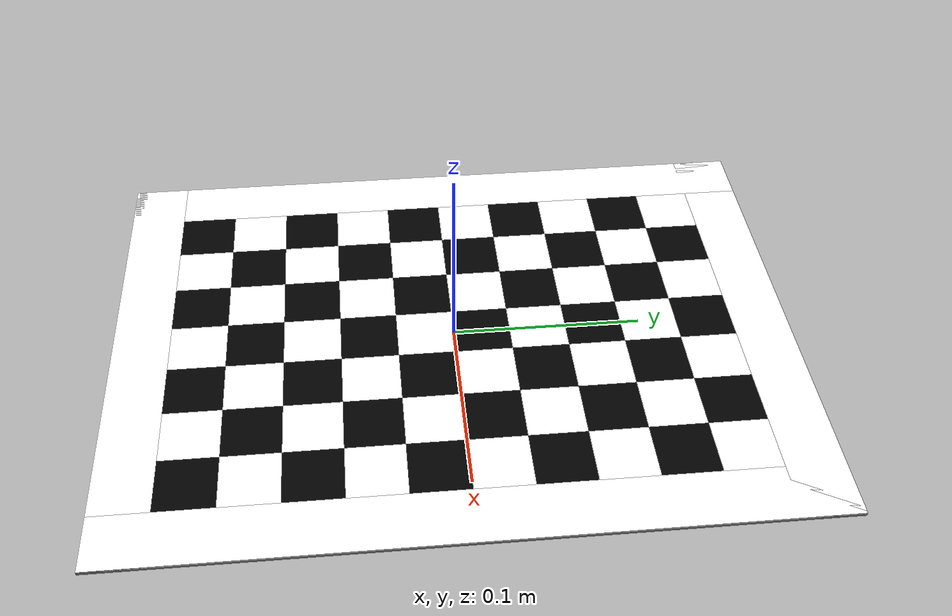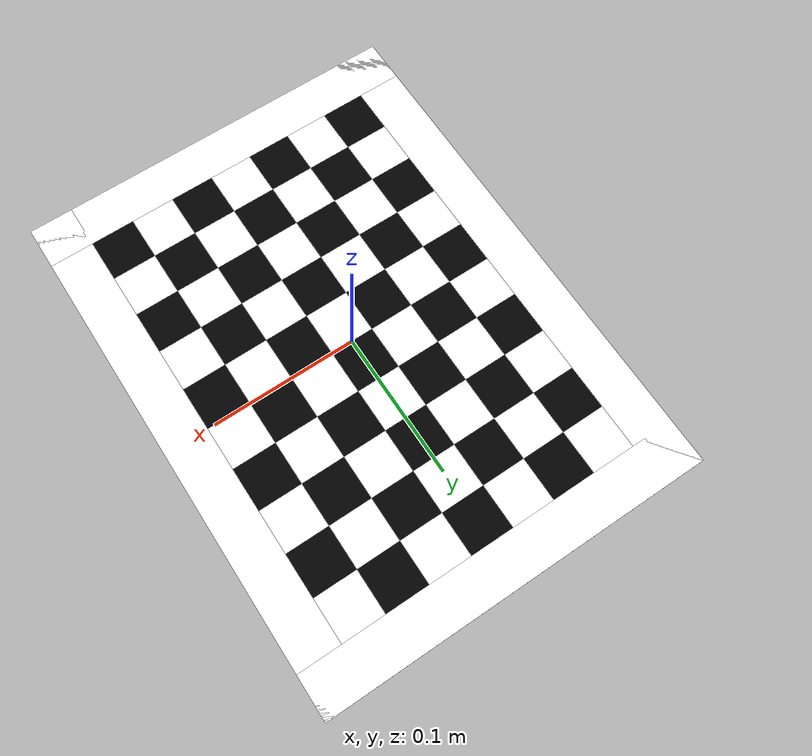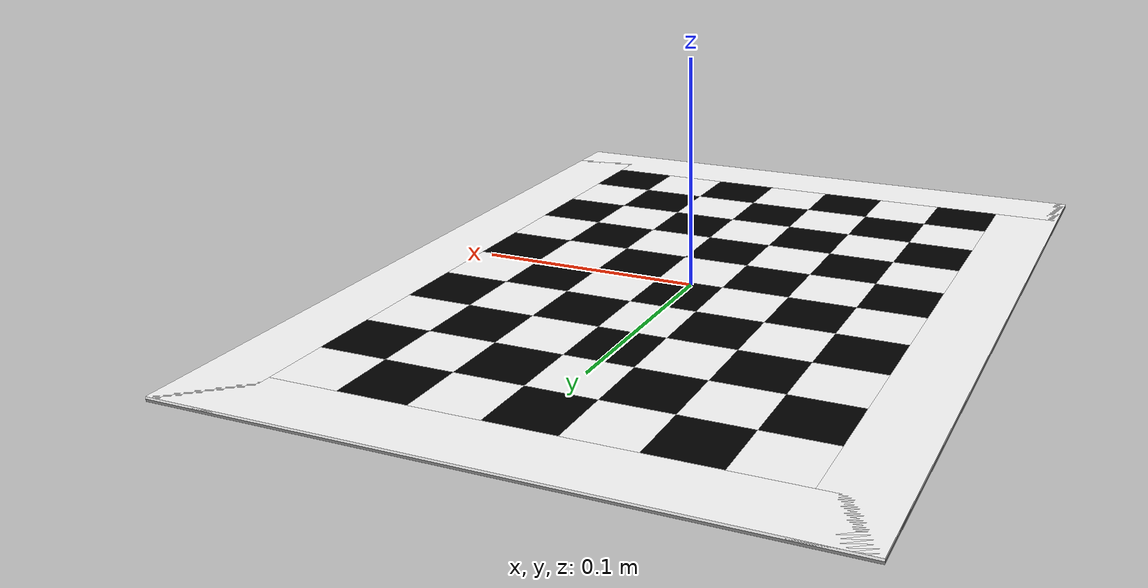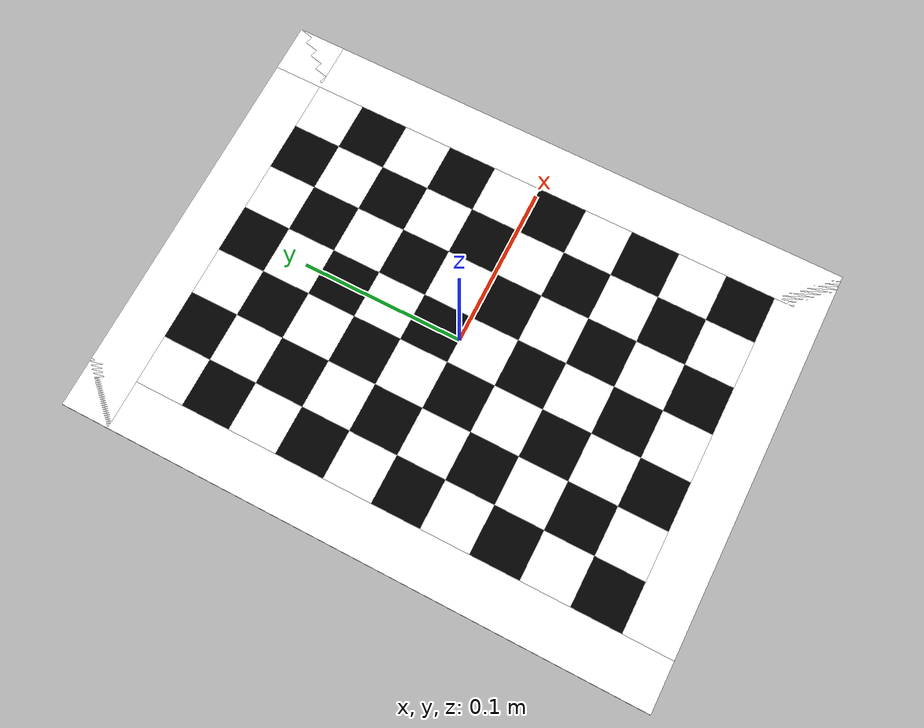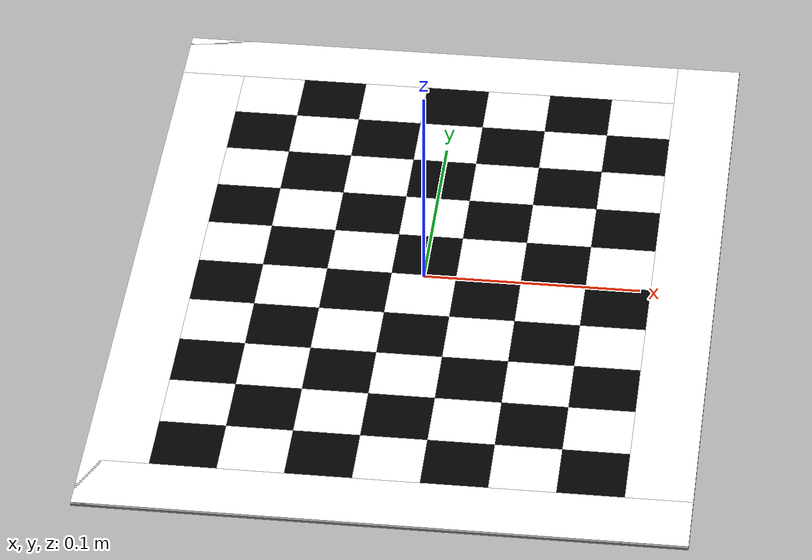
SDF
<?xml version="1.0" ?>
<!-- |    This document was autogenerated by xacro from landmark.sdf.xacro             | -->
<!-- |    EDITING THIS FILE BY HAND IS NOT RECOMMENDED                                 | -->
<sdf version="1.5" xmlns:xacro="http://www.ros.org/wiki/xacro">
  <model name="landmark">
    <static>true</static>
    <link name="base_link">
      <!-- Back of the landmark not to mess with small Z offset -->
      <visual name="back">
        <pose>0 0 -0.0005 0 0 0</pose>
        <geometry>
          <box>
            <size>0.27 0.36 0.001</size>
          </box>
        </geometry>
        <material>
          <ambient>0.5 0.5 0.5 1</ambient>
          <specular>0.5 0.5 0.5 1</specular>
          <diffuse>0.5 0.5 0.5 1</diffuse>
        </material>
      </visual>
      <inertial>
        <mass>0.1</mass>
      </inertial>
      <!-- Borders -->
      <visual name="border0">
        <pose>0.12 0 0.0005 0 0 0</pose>
        <geometry>
          <box>
            <size>0.03 0.36 0.001</size>
          </box>
        </geometry>
        <material>
          <ambient>1 1 1 1</ambient>
          <specular>1 1 1 1</specular>
          <diffuse>1 1 1 1</diffuse>
        </material>
      </visual>
      <visual name="border1">
        <pose>-0.12 0 0.0005 0 0 0</pose>
        <geometry>
          <box>
            <size>0.03 0.36 0.001</size>
          </box>
        </geometry>
        <material>
          <ambient>1 1 1 1</ambient>
          <specular>1 1 1 1</specular>
          <diffuse>1 1 1 1</diffuse>
        </material>
      </visual>
      <visual name="border2">
        <pose>0 0.165 0.0005 0 0 0</pose>
        <geometry>
          <box>
            <size>0.27 0.03 0.001</size>
          </box>
        </geometry>
        <material>
          <ambient>1 1 1 1</ambient>
          <specular>1 1 1 1</specular>
          <diffuse>1 1 1 1</diffuse>
        </material>
      </visual>
      <visual name="border3">
        <pose>0 -0.165 0.0005 0 0 0</pose>
        <geometry>
          <box>
            <size>0.27 0.03 0.001</size>
          </box>
        </geometry>
        <material>
          <ambient>1 1 1 1</ambient>
          <specular>1 1 1 1</specular>
          <diffuse>1 1 1 1</diffuse>
        </material>
      </visual>
      <visual name="69">
        <pose>0.09 0.135 0.0005 0 0 0</pose>
        <geometry>
          <box>
            <size>0.03 0.03 0.001</size>
          </box>
        </geometry>
        <material>
          <ambient>1 1 1 1</ambient>
          <specular>1 1 1 1</specular>
          <diffuse>1 1 1 1</diffuse>
        </material>
      </visual>
      <visual name="68">
        <pose>0.09 0.105 0.0005 0 0 0</pose>
        <geometry>
          <box>
            <size>0.03 0.03 0.001</size>
          </box>
        </geometry>
        <material>
          <ambient>0 0 0 1</ambient>
          <specular>0 0 0 1</specular>
          <diffuse>0 0 0 1</diffuse>
        </material>
      </visual>
      <visual name="67">
        <pose>0.09 0.075 0.0005 0 0 0</pose>
        <geometry>
          <box>
            <size>0.03 0.03 0.001</size>
          </box>
        </geometry>
        <material>
          <ambient>1 1 1 1</ambient>
          <specular>1 1 1 1</specular>
          <diffuse>1 1 1 1</diffuse>
        </material>
      </visual>
      <visual name="66">
        <pose>0.09 0.045 0.0005 0 0 0</pose>
        <geometry>
          <box>
            <size>0.03 0.03 0.001</size>
          </box>
        </geometry>
        <material>
          <ambient>0 0 0 1</ambient>
          <specular>0 0 0 1</specular>
          <diffuse>0 0 0 1</diffuse>
        </material>
      </visual>
      <visual name="65">
        <pose>0.09 0.015 0.0005 0 0 0</pose>
        <geometry>
          <box>
            <size>0.03 0.03 0.001</size>
          </box>
        </geometry>
        <material>
          <ambient>1 1 1 1</ambient>
          <specular>1 1 1 1</specular>
          <diffuse>1 1 1 1</diffuse>
        </material>
      </visual>
      <visual name="64">
        <pose>0.09 -0.015 0.0005 0 0 0</pose>
        <geometry>
          <box>
            <size>0.03 0.03 0.001</size>
          </box>
        </geometry>
        <material>
          <ambient>0 0 0 1</ambient>
          <specular>0 0 0 1</specular>
          <diffuse>0 0 0 1</diffuse>
        </material>
      </visual>
      <visual name="63">
        <pose>0.09 -0.045 0.0005 0 0 0</pose>
        <geometry>
          <box>
            <size>0.03 0.03 0.001</size>
          </box>
        </geometry>
        <material>
          <ambient>1 1 1 1</ambient>
          <specular>1 1 1 1</specular>
          <diffuse>1 1 1 1</diffuse>
        </material>
      </visual>
      <visual name="62">
        <pose>0.09 -0.075 0.0005 0 0 0</pose>
        <geometry>
          <box>
            <size>0.03 0.03 0.001</size>
          </box>
        </geometry>
        <material>
          <ambient>0 0 0 1</ambient>
          <specular>0 0 0 1</specular>
          <diffuse>0 0 0 1</diffuse>
        </material>
      </visual>
      <visual name="61">
        <pose>0.09 -0.105 0.0005 0 0 0</pose>
        <geometry>
          <box>
            <size>0.03 0.03 0.001</size>
          </box>
        </geometry>
        <material>
          <ambient>1 1 1 1</ambient>
          <specular>1 1 1 1</specular>
          <diffuse>1 1 1 1</diffuse>
        </material>
      </visual>
      <visual name="60">
        <pose>0.09 -0.135 0.0005 0 0 0</pose>
        <geometry>
          <box>
            <size>0.03 0.03 0.001</size>
          </box>
        </geometry>
        <material>
          <ambient>0 0 0 1</ambient>
          <specular>0 0 0 1</specular>
          <diffuse>0 0 0 1</diffuse>
        </material>
      </visual>
      <visual name="59">
        <pose>0.06 0.135 0.0005 0 0 0</pose>
        <geometry>
          <box>
            <size>0.03 0.03 0.001</size>
          </box>
        </geometry>
        <material>
          <ambient>0 0 0 1</ambient>
          <specular>0 0 0 1</specular>
          <diffuse>0 0 0 1</diffuse>
        </material>
      </visual>
      <visual name="58">
        <pose>0.06 0.105 0.0005 0 0 0</pose>
        <geometry>
          <box>
            <size>0.03 0.03 0.001</size>
          </box>
        </geometry>
        <material>
          <ambient>1 1 1 1</ambient>
          <specular>1 1 1 1</specular>
          <diffuse>1 1 1 1</diffuse>
        </material>
      </visual>
      <visual name="57">
        <pose>0.06 0.075 0.0005 0 0 0</pose>
        <geometry>
          <box>
            <size>0.03 0.03 0.001</size>
          </box>
        </geometry>
        <material>
          <ambient>0 0 0 1</ambient>
          <specular>0 0 0 1</specular>
          <diffuse>0 0 0 1</diffuse>
        </material>
      </visual>
      <visual name="56">
        <pose>0.06 0.045 0.0005 0 0 0</pose>
        <geometry>
          <box>
            <size>0.03 0.03 0.001</size>
          </box>
        </geometry>
        <material>
          <ambient>1 1 1 1</ambient>
          <specular>1 1 1 1</specular>
          <diffuse>1 1 1 1</diffuse>
        </material>
      </visual>
      <visual name="55">
        <pose>0.06 0.015 0.0005 0 0 0</pose>
        <geometry>
          <box>
            <size>0.03 0.03 0.001</size>
          </box>
        </geometry>
        <material>
          <ambient>0 0 0 1</ambient>
          <specular>0 0 0 1</specular>
          <diffuse>0 0 0 1</diffuse>
        </material>
      </visual>
      <visual name="54">
        <pose>0.06 -0.015 0.0005 0 0 0</pose>
        <geometry>
          <box>
            <size>0.03 0.03 0.001</size>
          </box>
        </geometry>
        <material>
          <ambient>1 1 1 1</ambient>
          <specular>1 1 1 1</specular>
          <diffuse>1 1 1 1</diffuse>
        </material>
      </visual>
      <visual name="53">
        <pose>0.06 -0.045 0.0005 0 0 0</pose>
        <geometry>
          <box>
            <size>0.03 0.03 0.001</size>
          </box>
        </geometry>
        <material>
          <ambient>0 0 0 1</ambient>
          <specular>0 0 0 1</specular>
          <diffuse>0 0 0 1</diffuse>
        </material>
      </visual>
      <visual name="52">
        <pose>0.06 -0.075 0.0005 0 0 0</pose>
        <geometry>
          <box>
            <size>0.03 0.03 0.001</size>
          </box>
        </geometry>
        <material>
          <ambient>1 1 1 1</ambient>
          <specular>1 1 1 1</specular>
          <diffuse>1 1 1 1</diffuse>
        </material>
      </visual>
      <visual name="51">
        <pose>0.06 -0.105 0.0005 0 0 0</pose>
        <geometry>
          <box>
            <size>0.03 0.03 0.001</size>
          </box>
        </geometry>
        <material>
          <ambient>0 0 0 1</ambient>
          <specular>0 0 0 1</specular>
          <diffuse>0 0 0 1</diffuse>
        </material>
      </visual>
      <visual name="50">
        <pose>0.06 -0.135 0.0005 0 0 0</pose>
        <geometry>
          <box>
            <size>0.03 0.03 0.001</size>
          </box>
        </geometry>
        <material>
          <ambient>1 1 1 1</ambient>
          <specular>1 1 1 1</specular>
          <diffuse>1 1 1 1</diffuse>
        </material>
      </visual>
      <visual name="49">
        <pose>0.03 0.135 0.0005 0 0 0</pose>
        <geometry>
          <box>
            <size>0.03 0.03 0.001</size>
          </box>
        </geometry>
        <material>
          <ambient>1 1 1 1</ambient>
          <specular>1 1 1 1</specular>
          <diffuse>1 1 1 1</diffuse>
        </material>
      </visual>
      <visual name="48">
        <pose>0.03 0.105 0.0005 0 0 0</pose>
        <geometry>
          <box>
            <size>0.03 0.03 0.001</size>
          </box>
        </geometry>
        <material>
          <ambient>0 0 0 1</ambient>
          <specular>0 0 0 1</specular>
          <diffuse>0 0 0 1</diffuse>
        </material>
      </visual>
      <visual name="47">
        <pose>0.03 0.075 0.0005 0 0 0</pose>
        <geometry>
          <box>
            <size>0.03 0.03 0.001</size>
          </box>
        </geometry>
        <material>
          <ambient>1 1 1 1</ambient>
          <specular>1 1 1 1</specular>
          <diffuse>1 1 1 1</diffuse>
        </material>
      </visual>
      <visual name="46">
        <pose>0.03 0.045 0.0005 0 0 0</pose>
        <geometry>
          <box>
            <size>0.03 0.03 0.001</size>
          </box>
        </geometry>
        <material>
          <ambient>0 0 0 1</ambient>
          <specular>0 0 0 1</specular>
          <diffuse>0 0 0 1</diffuse>
        </material>
      </visual>
      <visual name="45">
        <pose>0.03 0.015 0.0005 0 0 0</pose>
        <geometry>
          <box>
            <size>0.03 0.03 0.001</size>
          </box>
        </geometry>
        <material>
          <ambient>1 1 1 1</ambient>
          <specular>1 1 1 1</specular>
          <diffuse>1 1 1 1</diffuse>
        </material>
      </visual>
      <visual name="44">
        <pose>0.03 -0.015 0.0005 0 0 0</pose>
        <geometry>
          <box>
            <size>0.03 0.03 0.001</size>
          </box>
        </geometry>
        <material>
          <ambient>0 0 0 1</ambient>
          <specular>0 0 0 1</specular>
          <diffuse>0 0 0 1</diffuse>
        </material>
      </visual>
      <visual name="43">
        <pose>0.03 -0.045 0.0005 0 0 0</pose>
        <geometry>
          <box>
            <size>0.03 0.03 0.001</size>
          </box>
        </geometry>
        <material>
          <ambient>1 1 1 1</ambient>
          <specular>1 1 1 1</specular>
          <diffuse>1 1 1 1</diffuse>
        </material>
      </visual>
      <visual name="42">
        <pose>0.03 -0.075 0.0005 0 0 0</pose>
        <geometry>
          <box>
            <size>0.03 0.03 0.001</size>
          </box>
        </geometry>
        <material>
          <ambient>0 0 0 1</ambient>
          <specular>0 0 0 1</specular>
          <diffuse>0 0 0 1</diffuse>
        </material>
      </visual>
      <visual name="41">
        <pose>0.03 -0.105 0.0005 0 0 0</pose>
        <geometry>
          <box>
            <size>0.03 0.03 0.001</size>
          </box>
        </geometry>
        <material>
          <ambient>1 1 1 1</ambient>
          <specular>1 1 1 1</specular>
          <diffuse>1 1 1 1</diffuse>
        </material>
      </visual>
      <visual name="40">
        <pose>0.03 -0.135 0.0005 0 0 0</pose>
        <geometry>
          <box>
            <size>0.03 0.03 0.001</size>
          </box>
        </geometry>
        <material>
          <ambient>0 0 0 1</ambient>
          <specular>0 0 0 1</specular>
          <diffuse>0 0 0 1</diffuse>
        </material>
      </visual>
      <visual name="39">
        <pose>0.0 0.135 0.0005 0 0 0</pose>
        <geometry>
          <box>
            <size>0.03 0.03 0.001</size>
          </box>
        </geometry>
        <material>
          <ambient>0 0 0 1</ambient>
          <specular>0 0 0 1</specular>
          <diffuse>0 0 0 1</diffuse>
        </material>
      </visual>
      <visual name="38">
        <pose>0.0 0.105 0.0005 0 0 0</pose>
        <geometry>
          <box>
            <size>0.03 0.03 0.001</size>
          </box>
        </geometry>
        <material>
          <ambient>1 1 1 1</ambient>
          <specular>1 1 1 1</specular>
          <diffuse>1 1 1 1</diffuse>
        </material>
      </visual>
      <visual name="37">
        <pose>0.0 0.075 0.0005 0 0 0</pose>
        <geometry>
          <box>
            <size>0.03 0.03 0.001</size>
          </box>
        </geometry>
        <material>
          <ambient>0 0 0 1</ambient>
          <specular>0 0 0 1</specular>
          <diffuse>0 0 0 1</diffuse>
        </material>
      </visual>
      <visual name="36">
        <pose>0.0 0.045 0.0005 0 0 0</pose>
        <geometry>
          <box>
            <size>0.03 0.03 0.001</size>
          </box>
        </geometry>
        <material>
          <ambient>1 1 1 1</ambient>
          <specular>1 1 1 1</specular>
          <diffuse>1 1 1 1</diffuse>
        </material>
      </visual>
      <visual name="35">
        <pose>0.0 0.015 0.0005 0 0 0</pose>
        <geometry>
          <box>
            <size>0.03 0.03 0.001</size>
          </box>
        </geometry>
        <material>
          <ambient>0 0 0 1</ambient>
          <specular>0 0 0 1</specular>
          <diffuse>0 0 0 1</diffuse>
        </material>
      </visual>
      <visual name="34">
        <pose>0.0 -0.015 0.0005 0 0 0</pose>
        <geometry>
          <box>
            <size>0.03 0.03 0.001</size>
          </box>
        </geometry>
        <material>
          <ambient>1 1 1 1</ambient>
          <specular>1 1 1 1</specular>
          <diffuse>1 1 1 1</diffuse>
        </material>
      </visual>
      <visual name="33">
        <pose>0.0 -0.045 0.0005 0 0 0</pose>
        <geometry>
          <box>
            <size>0.03 0.03 0.001</size>
          </box>
        </geometry>
        <material>
          <ambient>0 0 0 1</ambient>
          <specular>0 0 0 1</specular>
          <diffuse>0 0 0 1</diffuse>
        </material>
      </visual>
      <visual name="32">
        <pose>0.0 -0.075 0.0005 0 0 0</pose>
        <geometry>
          <box>
            <size>0.03 0.03 0.001</size>
          </box>
        </geometry>
        <material>
          <ambient>1 1 1 1</ambient>
          <specular>1 1 1 1</specular>
          <diffuse>1 1 1 1</diffuse>
        </material>
      </visual>
      <visual name="31">
        <pose>0.0 -0.105 0.0005 0 0 0</pose>
        <geometry>
          <box>
            <size>0.03 0.03 0.001</size>
          </box>
        </geometry>
        <material>
          <ambient>0 0 0 1</ambient>
          <specular>0 0 0 1</specular>
          <diffuse>0 0 0 1</diffuse>
        </material>
      </visual>
      <visual name="30">
        <pose>0.0 -0.135 0.0005 0 0 0</pose>
        <geometry>
          <box>
            <size>0.03 0.03 0.001</size>
          </box>
        </geometry>
        <material>
          <ambient>1 1 1 1</ambient>
          <specular>1 1 1 1</specular>
          <diffuse>1 1 1 1</diffuse>
        </material>
      </visual>
      <visual name="29">
        <pose>-0.03 0.135 0.0005 0 0 0</pose>
        <geometry>
          <box>
            <size>0.03 0.03 0.001</size>
          </box>
        </geometry>
        <material>
          <ambient>1 1 1 1</ambient>
          <specular>1 1 1 1</specular>
          <diffuse>1 1 1 1</diffuse>
        </material>
      </visual>
      <visual name="28">
        <pose>-0.03 0.105 0.0005 0 0 0</pose>
        <geometry>
          <box>
            <size>0.03 0.03 0.001</size>
          </box>
        </geometry>
        <material>
          <ambient>0 0 0 1</ambient>
          <specular>0 0 0 1</specular>
          <diffuse>0 0 0 1</diffuse>
        </material>
      </visual>
      <visual name="27">
        <pose>-0.03 0.075 0.0005 0 0 0</pose>
        <geometry>
          <box>
            <size>0.03 0.03 0.001</size>
          </box>
        </geometry>
        <material>
          <ambient>1 1 1 1</ambient>
          <specular>1 1 1 1</specular>
          <diffuse>1 1 1 1</diffuse>
        </material>
      </visual>
      <visual name="26">
        <pose>-0.03 0.045 0.0005 0 0 0</pose>
        <geometry>
          <box>
            <size>0.03 0.03 0.001</size>
          </box>
        </geometry>
        <material>
          <ambient>0 0 0 1</ambient>
          <specular>0 0 0 1</specular>
          <diffuse>0 0 0 1</diffuse>
        </material>
      </visual>
      <visual name="25">
        <pose>-0.03 0.015 0.0005 0 0 0</pose>
        <geometry>
          <box>
            <size>0.03 0.03 0.001</size>
          </box>
        </geometry>
        <material>
          <ambient>1 1 1 1</ambient>
          <specular>1 1 1 1</specular>
          <diffuse>1 1 1 1</diffuse>
        </material>
      </visual>
      <visual name="24">
        <pose>-0.03 -0.015 0.0005 0 0 0</pose>
        <geometry>
          <box>
            <size>0.03 0.03 0.001</size>
          </box>
        </geometry>
        <material>
          <ambient>0 0 0 1</ambient>
          <specular>0 0 0 1</specular>
          <diffuse>0 0 0 1</diffuse>
        </material>
      </visual>
      <visual name="23">
        <pose>-0.03 -0.045 0.0005 0 0 0</pose>
        <geometry>
          <box>
            <size>0.03 0.03 0.001</size>
          </box>
        </geometry>
        <material>
          <ambient>1 1 1 1</ambient>
          <specular>1 1 1 1</specular>
          <diffuse>1 1 1 1</diffuse>
        </material>
      </visual>
      <visual name="22">
        <pose>-0.03 -0.075 0.0005 0 0 0</pose>
        <geometry>
          <box>
            <size>0.03 0.03 0.001</size>
          </box>
        </geometry>
        <material>
          <ambient>0 0 0 1</ambient>
          <specular>0 0 0 1</specular>
          <diffuse>0 0 0 1</diffuse>
        </material>
      </visual>
      <visual name="21">
        <pose>-0.03 -0.105 0.0005 0 0 0</pose>
        <geometry>
          <box>
            <size>0.03 0.03 0.001</size>
          </box>
        </geometry>
        <material>
          <ambient>1 1 1 1</ambient>
          <specular>1 1 1 1</specular>
          <diffuse>1 1 1 1</diffuse>
        </material>
      </visual>
      <visual name="20">
        <pose>-0.03 -0.135 0.0005 0 0 0</pose>
        <geometry>
          <box>
            <size>0.03 0.03 0.001</size>
          </box>
        </geometry>
        <material>
          <ambient>0 0 0 1</ambient>
          <specular>0 0 0 1</specular>
          <diffuse>0 0 0 1</diffuse>
        </material>
      </visual>
      <visual name="19">
        <pose>-0.06 0.135 0.0005 0 0 0</pose>
        <geometry>
          <box>
            <size>0.03 0.03 0.001</size>
          </box>
        </geometry>
        <material>
          <ambient>0 0 0 1</ambient>
          <specular>0 0 0 1</specular>
          <diffuse>0 0 0 1</diffuse>
        </material>
      </visual>
      <visual name="18">
        <pose>-0.06 0.105 0.0005 0 0 0</pose>
        <geometry>
          <box>
            <size>0.03 0.03 0.001</size>
          </box>
        </geometry>
        <material>
          <ambient>1 1 1 1</ambient>
          <specular>1 1 1 1</specular>
          <diffuse>1 1 1 1</diffuse>
        </material>
      </visual>
      <visual name="17">
        <pose>-0.06 0.075 0.0005 0 0 0</pose>
        <geometry>
          <box>
            <size>0.03 0.03 0.001</size>
          </box>
        </geometry>
        <material>
          <ambient>0 0 0 1</ambient>
          <specular>0 0 0 1</specular>
          <diffuse>0 0 0 1</diffuse>
        </material>
      </visual>
      <visual name="16">
        <pose>-0.06 0.045 0.0005 0 0 0</pose>
        <geometry>
          <box>
            <size>0.03 0.03 0.001</size>
          </box>
        </geometry>
        <material>
          <ambient>1 1 1 1</ambient>
          <specular>1 1 1 1</specular>
          <diffuse>1 1 1 1</diffuse>
        </material>
      </visual>
      <visual name="15">
        <pose>-0.06 0.015 0.0005 0 0 0</pose>
        <geometry>
          <box>
            <size>0.03 0.03 0.001</size>
          </box>
        </geometry>
        <material>
          <ambient>0 0 0 1</ambient>
          <specular>0 0 0 1</specular>
          <diffuse>0 0 0 1</diffuse>
        </material>
      </visual>
      <visual name="14">
        <pose>-0.06 -0.015 0.0005 0 0 0</pose>
        <geometry>
          <box>
            <size>0.03 0.03 0.001</size>
          </box>
        </geometry>
        <material>
          <ambient>1 1 1 1</ambient>
          <specular>1 1 1 1</specular>
          <diffuse>1 1 1 1</diffuse>
        </material>
      </visual>
      <visual name="13">
        <pose>-0.06 -0.045 0.0005 0 0 0</pose>
        <geometry>
          <box>
            <size>0.03 0.03 0.001</size>
          </box>
        </geometry>
        <material>
          <ambient>0 0 0 1</ambient>
          <specular>0 0 0 1</specular>
          <diffuse>0 0 0 1</diffuse>
        </material>
      </visual>
      <visual name="12">
        <pose>-0.06 -0.075 0.0005 0 0 0</pose>
        <geometry>
          <box>
            <size>0.03 0.03 0.001</size>
          </box>
        </geometry>
        <material>
          <ambient>1 1 1 1</ambient>
          <specular>1 1 1 1</specular>
          <diffuse>1 1 1 1</diffuse>
        </material>
      </visual>
      <visual name="11">
        <pose>-0.06 -0.105 0.0005 0 0 0</pose>
        <geometry>
          <box>
            <size>0.03 0.03 0.001</size>
          </box>
        </geometry>
        <material>
          <ambient>0 0 0 1</ambient>
          <specular>0 0 0 1</specular>
          <diffuse>0 0 0 1</diffuse>
        </material>
      </visual>
      <visual name="10">
        <pose>-0.06 -0.135 0.0005 0 0 0</pose>
        <geometry>
          <box>
            <size>0.03 0.03 0.001</size>
          </box>
        </geometry>
        <material>
          <ambient>1 1 1 1</ambient>
          <specular>1 1 1 1</specular>
          <diffuse>1 1 1 1</diffuse>
        </material>
      </visual>
      <visual name="09">
        <pose>-0.09 0.135 0.0005 0 0 0</pose>
        <geometry>
          <box>
            <size>0.03 0.03 0.001</size>
          </box>
        </geometry>
        <material>
          <ambient>1 1 1 1</ambient>
          <specular>1 1 1 1</specular>
          <diffuse>1 1 1 1</diffuse>
        </material>
      </visual>
      <visual name="08">
        <pose>-0.09 0.105 0.0005 0 0 0</pose>
        <geometry>
          <box>
            <size>0.03 0.03 0.001</size>
          </box>
        </geometry>
        <material>
          <ambient>0 0 0 1</ambient>
          <specular>0 0 0 1</specular>
          <diffuse>0 0 0 1</diffuse>
        </material>
      </visual>
      <visual name="07">
        <pose>-0.09 0.075 0.0005 0 0 0</pose>
        <geometry>
          <box>
            <size>0.03 0.03 0.001</size>
          </box>
        </geometry>
        <material>
          <ambient>1 1 1 1</ambient>
          <specular>1 1 1 1</specular>
          <diffuse>1 1 1 1</diffuse>
        </material>
      </visual>
      <visual name="06">
        <pose>-0.09 0.045 0.0005 0 0 0</pose>
        <geometry>
          <box>
            <size>0.03 0.03 0.001</size>
          </box>
        </geometry>
        <material>
          <ambient>0 0 0 1</ambient>
          <specular>0 0 0 1</specular>
          <diffuse>0 0 0 1</diffuse>
        </material>
      </visual>
      <visual name="05">
        <pose>-0.09 0.015 0.0005 0 0 0</pose>
        <geometry>
          <box>
            <size>0.03 0.03 0.001</size>
          </box>
        </geometry>
        <material>
          <ambient>1 1 1 1</ambient>
          <specular>1 1 1 1</specular>
          <diffuse>1 1 1 1</diffuse>
        </material>
      </visual>
      <visual name="04">
        <pose>-0.09 -0.015 0.0005 0 0 0</pose>
        <geometry>
          <box>
            <size>0.03 0.03 0.001</size>
          </box>
        </geometry>
        <material>
          <ambient>0 0 0 1</ambient>
          <specular>0 0 0 1</specular>
          <diffuse>0 0 0 1</diffuse>
        </material>
      </visual>
      <visual name="03">
        <pose>-0.09 -0.045 0.0005 0 0 0</pose>
        <geometry>
          <box>
            <size>0.03 0.03 0.001</size>
          </box>
        </geometry>
        <material>
          <ambient>1 1 1 1</ambient>
          <specular>1 1 1 1</specular>
          <diffuse>1 1 1 1</diffuse>
        </material>
      </visual>
      <visual name="02">
        <pose>-0.09 -0.075 0.0005 0 0 0</pose>
        <geometry>
          <box>
            <size>0.03 0.03 0.001</size>
          </box>
        </geometry>
        <material>
          <ambient>0 0 0 1</ambient>
          <specular>0 0 0 1</specular>
          <diffuse>0 0 0 1</diffuse>
        </material>
      </visual>
      <visual name="01">
        <pose>-0.09 -0.105 0.0005 0 0 0</pose>
        <geometry>
          <box>
            <size>0.03 0.03 0.001</size>
          </box>
        </geometry>
        <material>
          <ambient>1 1 1 1</ambient>
          <specular>1 1 1 1</specular>
          <diffuse>1 1 1 1</diffuse>
        </material>
      </visual>
      <visual name="00">
        <pose>-0.09 -0.135 0.0005 0 0 0</pose>
        <geometry>
          <box>
            <size>0.03 0.03 0.001</size>
          </box>
        </geometry>
        <material>
          <ambient>0 0 0 1</ambient>
          <specular>0 0 0 1</specular>
          <diffuse>0 0 0 1</diffuse>
        </material>
      </visual>
    </link>
  </model>
</sdf>
